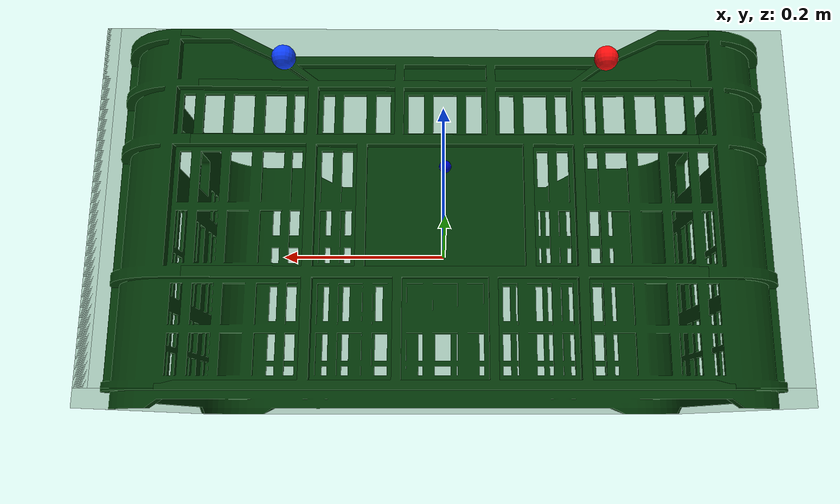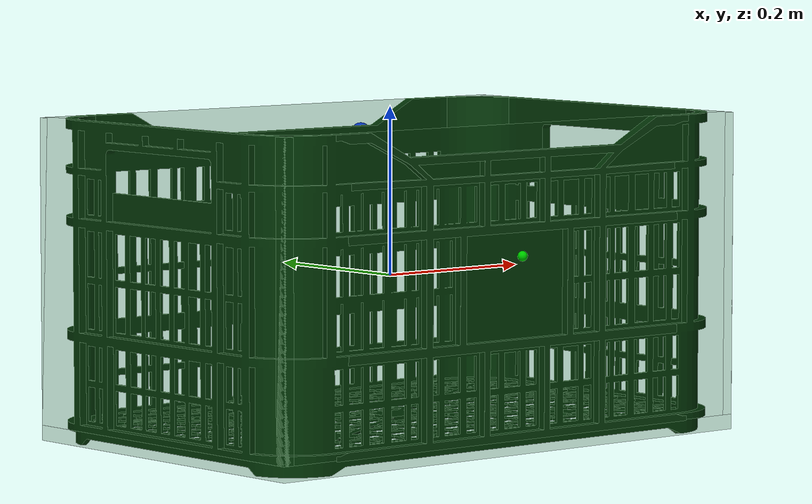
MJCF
<mujoco model="plastic_crate">
  <asset>
    <mesh name="crate_mesh" file="meshes/plastic_crate.obj" scale="1 1 1"/>
    <material name="crate_green" rgba="0.02 0.22 0.04 1" specular="0.35" shininess="0.25"/>
    <material name="crate_collision" rgba="0.02 0.22 0.04 0.25" specular="0.1" shininess="0.1"/>
  </asset>

  <worldbody>
    <body>
      <body name="object">
        <inertial pos="0 0 0" mass="0.25" diaginertia="0.0020 0.0035 0.0038"/>

        <geom name="visual"
              type="mesh"
              mesh="crate_mesh"
              material="crate_green"
              pos="0 0 -0.169881"
              quat="0.70710678 0.70710678 0 0"
              contype="0"
              conaffinity="0"
              group="1"/>

        <geom name="crate_col_bottom" type="box"
              pos="0 0 -0.18148"
              size="0.34493 0.22683 0.009"
              material="crate_collision"
              friction="1.0 0.005 0.0001"
              group="0"/>
        <geom name="crate_col_front" type="box"
              pos="0 -0.21983 0.009"
              size="0.34493 0.007 0.18148"
              material="crate_collision"
              friction="1.0 0.005 0.0001"
              group="0"/>
        <geom name="crate_col_back" type="box"
              pos="0 0.21983 0.009"
              size="0.34493 0.007 0.18148"
              material="crate_collision"
              friction="1.0 0.005 0.0001"
              group="0"/>
        <geom name="crate_col_left" type="box"
              pos="-0.33793 0 0.009"
              size="0.007 0.22683 0.18148"
              material="crate_collision"
              friction="1.0 0.005 0.0001"
              group="0"/>
        <geom name="crate_col_right" type="box"
              pos="0.33793 0 0.009"
              size="0.007 0.22683 0.18148"
              material="crate_collision"
              friction="1.0 0.005 0.0001"
              group="0"/>

        <site name="handle0" pos="0 -0.235 0.04" size="0.006" rgba="0 1 0 0.8" group="2"/>
        <site name="handle1" pos="0 0.235 0.04" size="0.006" rgba="0 0 1 0.8" group="2"/>
        <site name="right_grasp_set" pos="-0.160 0.245 0.150" size="0.012" rgba="1 0.05 0.05 1" group="2"/>
        <site name="left_grasp_set" pos="0.160 0.245 0.150" size="0.012" rgba="0.05 0.25 1 1" group="2"/>
        <site name="center" pos="0 0 0" size="0.006" rgba="1 0 0 0.3" group="2"/>
      </body>
      <site rgba="0 0 0 0" size="0.005" pos="0 0 -0.19048" name="bottom_site"/>
      <site rgba="0 0 0 0" size="0.005" pos="0 0 0.19048" name="top_site"/>
      <site rgba="0 0 0 0" size="0.005" pos="0.36 0.24 0" name="horizontal_radius_site"/>
    </body>
  </worldbody>
</mujoco>
